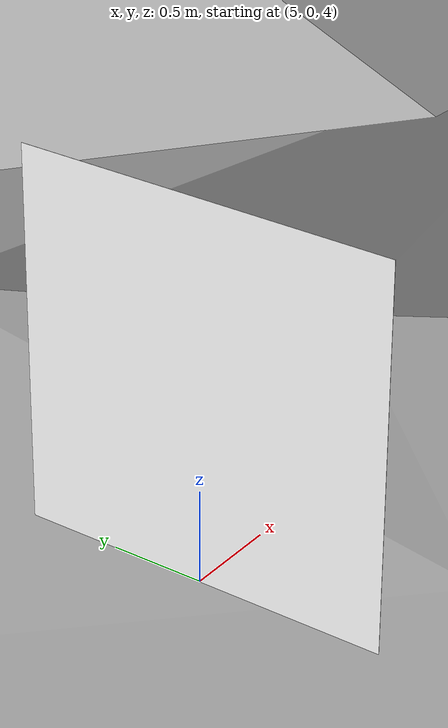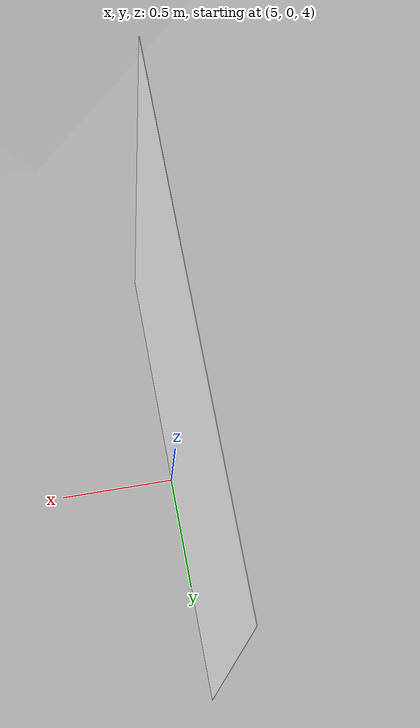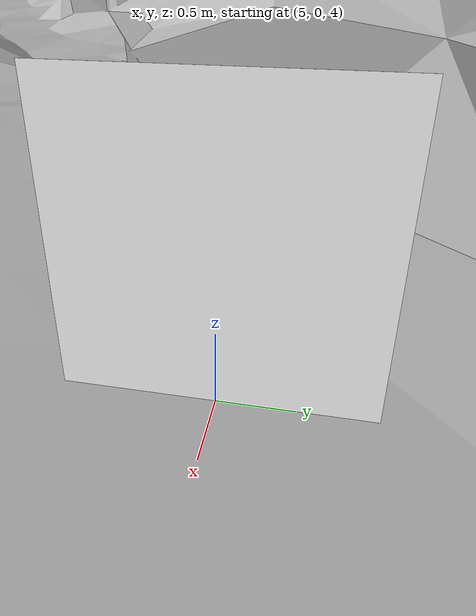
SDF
<?xml version="1.0" encoding="UTF-8"?>
<sdf version="1.9">
  <world name="ubp">
    <physics type="ode">
      <max_step_size>0.004</max_step_size>
      <real_time_factor>1.0</real_time_factor>
      <real_time_update_rate>250</real_time_update_rate>
    </physics>
    <plugin name="gz::sim::systems::Physics" filename="gz-sim-physics-system"/>
    <plugin name="gz::sim::systems::UserCommands" filename="gz-sim-user-commands-system"/>
    <plugin name="gz::sim::systems::SceneBroadcaster" filename="gz-sim-scene-broadcaster-system"/>
    <plugin name="gz::sim::systems::Contact" filename="gz-sim-contact-system"/>
    <plugin name="gz::sim::systems::Imu" filename="gz-sim-imu-system"/>
    <plugin name="gz::sim::systems::AirPressure" filename="gz-sim-air-pressure-system"/>
    <plugin name="gz::sim::systems::ApplyLinkWrench" filename="gz-sim-apply-link-wrench-system"/>
    <plugin name="gz::sim::systems::NavSat" filename="gz-sim-navsat-system"/>
    <plugin name="gz::sim::systems::Sensors" filename="gz-sim-sensors-system">
      <render_engine>ogre2</render_engine>
    </plugin>
    <gui fullscreen="false">
      <!-- 3D scene -->
      <plugin filename="MinimalScene" name="3D View">
        <gz-gui>
          <title>3D View</title>
          <property type="bool" key="showTitleBar">false</property>
          <property type="string" key="state">docked</property>
        </gz-gui>
        <engine>ogre2</engine>
        <scene>scene</scene>
        <ambient_light>0.4 0.4 0.4</ambient_light>
        <background_color>0.8 0.8 0.8</background_color>
        <camera_pose>-6 0 6 0 0.5 0</camera_pose>
        <camera_clip>
          <near>0.25</near>
          <far>25000</far>
        </camera_clip>
      </plugin>
      <!-- Plugins that add functionality to the scene -->
      <plugin filename="EntityContextMenuPlugin" name="Entity context menu">
        <gz-gui>
          <property key="state" type="string">floating</property>
          <property key="width" type="double">5</property>
          <property key="height" type="double">5</property>
          <property key="showTitleBar" type="bool">false</property>
        </gz-gui>
      </plugin>
      <plugin filename="GzSceneManager" name="Scene Manager">
        <gz-gui>
          <property key="resizable" type="bool">false</property>
          <property key="width" type="double">5</property>
          <property key="height" type="double">5</property>
          <property key="state" type="string">floating</property>
          <property key="showTitleBar" type="bool">false</property>
        </gz-gui>
      </plugin>
      <plugin filename="InteractiveViewControl" name="Interactive view control">
        <gz-gui>
          <property key="resizable" type="bool">false</property>
          <property key="width" type="double">5</property>
          <property key="height" type="double">5</property>
          <property key="state" type="string">floating</property>
          <property key="showTitleBar" type="bool">false</property>
        </gz-gui>
      </plugin>
      <plugin filename="CameraTracking" name="Camera Tracking">
        <gz-gui>
          <property key="resizable" type="bool">false</property>
          <property key="width" type="double">5</property>
          <property key="height" type="double">5</property>
          <property key="state" type="string">floating</property>
          <property key="showTitleBar" type="bool">false</property>
        </gz-gui>
      </plugin>
      <plugin filename="MarkerManager" name="Marker manager">
        <gz-gui>
          <property key="resizable" type="bool">false</property>
          <property key="width" type="double">5</property>
          <property key="height" type="double">5</property>
          <property key="state" type="string">floating</property>
          <property key="showTitleBar" type="bool">false</property>
        </gz-gui>
      </plugin>
      <plugin filename="SelectEntities" name="Select Entities">
        <gz-gui>
          <anchors target="Select entities">
            <line own="right" target="right"/>
            <line own="top" target="top"/>
          </anchors>
          <property key="resizable" type="bool">false</property>
          <property key="width" type="double">5</property>
          <property key="height" type="double">5</property>
          <property key="state" type="string">floating</property>
          <property key="showTitleBar" type="bool">false</property>
        </gz-gui>
      </plugin>
      <plugin filename="VisualizationCapabilities" name="Visualization Capabilities">
        <gz-gui>
          <property key="resizable" type="bool">false</property>
          <property key="width" type="double">5</property>
          <property key="height" type="double">5</property>
          <property key="state" type="string">floating</property>
          <property key="showTitleBar" type="bool">false</property>
        </gz-gui>
      </plugin>
      <plugin filename="Spawn" name="Spawn Entities">
        <gz-gui>
          <anchors target="Select entities">
            <line own="right" target="right"/>
            <line own="top" target="top"/>
          </anchors>
          <property key="resizable" type="bool">false</property>
          <property key="width" type="double">5</property>
          <property key="height" type="double">5</property>
          <property key="state" type="string">floating</property>
          <property key="showTitleBar" type="bool">false</property>
        </gz-gui>
      </plugin>
      <plugin name="World control" filename="WorldControl">
        <gz-gui>
          <title>World control</title>
          <property type="bool" key="showTitleBar">0</property>
          <property type="bool" key="resizable">0</property>
          <property type="double" key="height">72</property>
          <property type="double" key="width">121</property>
          <property type="double" key="z">1</property>
          <property type="string" key="state">floating</property>
          <anchors target="3D View">
            <line own="left" target="left"/>
            <line own="bottom" target="bottom"/>
          </anchors>
        </gz-gui>
        <play_pause>1</play_pause>
        <step>1</step>
        <start_paused>1</start_paused>
      </plugin>
      <plugin name="World stats" filename="WorldStats">
        <gz-gui>
          <title>World stats</title>
          <property type="bool" key="showTitleBar">0</property>
          <property type="bool" key="resizable">0</property>
          <property type="double" key="height">110</property>
          <property type="double" key="width">290</property>
          <property type="double" key="z">1</property>
          <property type="string" key="state">floating</property>
          <anchors target="3D View">
            <line own="right" target="right"/>
            <line own="bottom" target="bottom"/>
          </anchors>
        </gz-gui>
        <sim_time>1</sim_time>
        <real_time>1</real_time>
        <real_time_factor>1</real_time_factor>
        <iterations>1</iterations>
      </plugin>
      <plugin name="Entity tree" filename="EntityTree"/>
    </gui>
    <gravity>0 0 -9.8</gravity>
    <magnetic_field>6e-06 2.3e-05 -4.2e-05</magnetic_field>
    <atmosphere type="adiabatic"/>
    <scene>
      <grid>false</grid>
      <ambient>0.4 0.4 0.4 1</ambient>
      <background>0.7 0.7 0.7 1</background>
      <shadows>true</shadows>
    </scene>
    <light name="sunUTC" type="directional">
      <pose>0 0 500 0 -0 0</pose>
      <cast_shadows>true</cast_shadows>
      <intensity>1</intensity>
      <direction>0.001 0.625 -0.78</direction>
      <diffuse>0.904 0.904 0.904 1</diffuse>
      <specular>0.271 0.271 0.271 1</specular>
      <attenuation>
        <range>2000</range>
        <linear>0</linear>
        <constant>1</constant>
        <quadratic>0</quadratic>
      </attenuation>
      <spot>
        <inner_angle>0</inner_angle>
        <outer_angle>0</outer_angle>
        <falloff>0</falloff>
      </spot>
    </light>
    <include>
      <pose>0 15 11 0 0 0</pose>
      <uri>
        https://fuel.gazebosim.org/1.0/beronaeron/models/upb 12
      </uri>
    </include>
    <model name="textured_plane">
      <static>true</static>
      <link name="link">
        <visual name="visual">
          <pose>5 0 5 1.57 0 -1.57</pose>
          <geometry>
            <plane>
              <normal>0 0 1</normal>
              <size>2 2</size>
            </plane>
          </geometry>
          <material>
            <ambient>1 1 1 1</ambient>
            <diffuse>1 1 1 1</diffuse>
            <specular>0.1 0.1 0.1 1</specular>
            <emissive>0 0 0 1</emissive>
            <pbr>
              <metal>
                <albedo_map>file:///home/omer/Pictures/apriltag.png</albedo_map>
              </metal>
            </pbr>
          </material>
        </visual>
      </link>
    </model>
    <spherical_coordinates>
      <surface_model>EARTH_WGS84</surface_model>
      <world_frame_orientation>ENU</world_frame_orientation>
      <latitude_deg>47.397971057728974</latitude_deg>
      <longitude_deg> 8.546163739800146</longitude_deg>
      <elevation>0</elevation>
    </spherical_coordinates>
  </world>
</sdf>

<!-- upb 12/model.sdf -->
<sdf version='1.5'>
 <model name="upb12">

    <pose>0 0 0.0 0 0 0</pose>

    <self_collide>false</self_collide>

    <static>true</static>
    <link name="upb12_link">
          <pose frame=''>0 0 0 0 -0 0</pose>
          <collision name="upb12_collisions">
            <geometry>
              <mesh>
                  <scale>1 1 1</scale>
                    <uri>model://upb12/meshes/collision.obj</uri>
              </mesh>
            </geometry>
            <surface>
              <contact>
                <ode>
                  <min_depth>0.001</min_depth>
                  <max_vel>0</max_vel>
                </ode>
              </contact>
              <friction>
                <ode/>
              </friction>
            </surface>
          </collision>
          <visual name="upb12_visual">
            <geometry>
              <mesh>
                  <scale>1 1 1</scale>
                    <uri>model://upb12/meshes/mesh.obj</uri>
              </mesh>
            </geometry>
          </visual>
          <gravity>1</gravity>
        </link>
</model>
</sdf>
